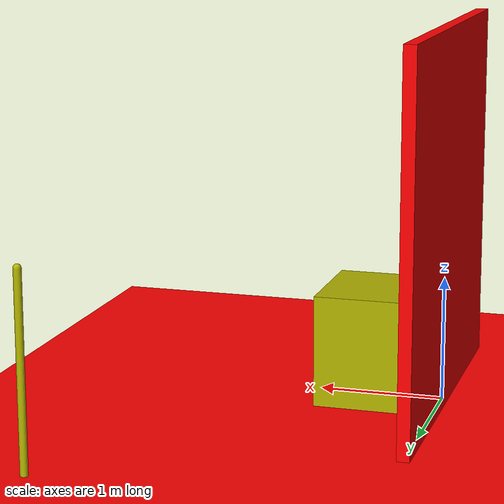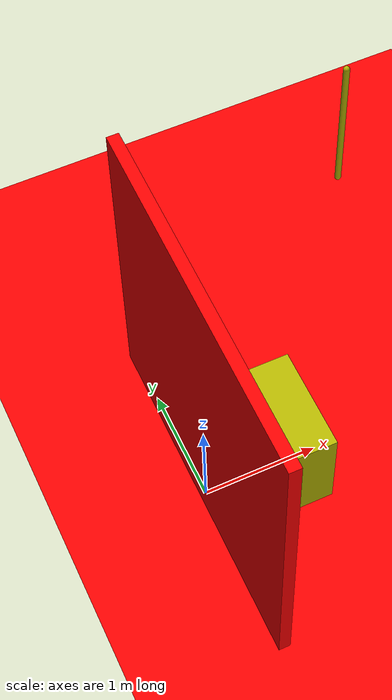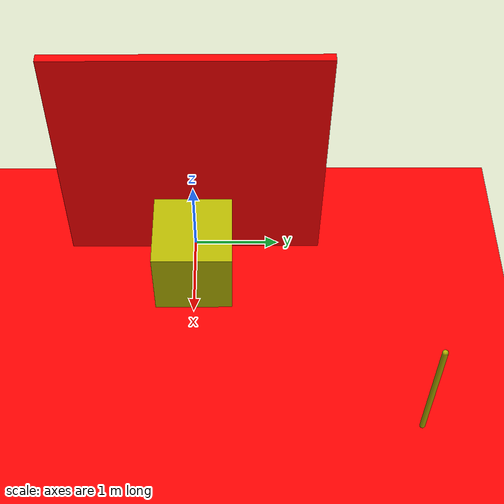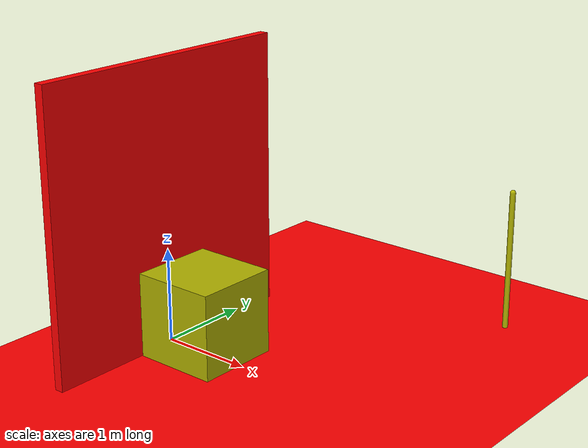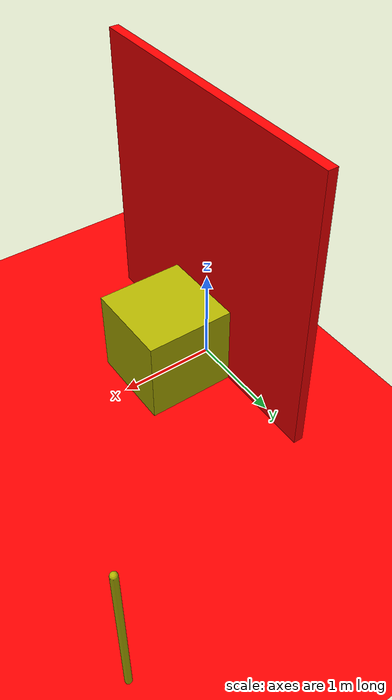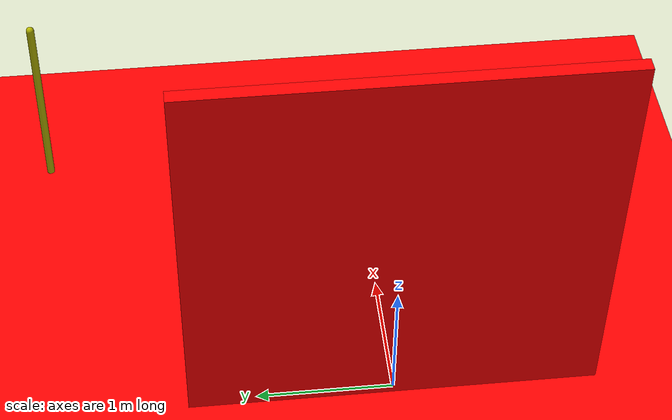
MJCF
<mujoco model="pusher_plane_2d">
    <compiler angle="radian" inertiafromgeom="true"/>
    <default>
        <joint armature="1" damping="1" limited="true"/>
        <geom contype="0" friction="1. 0.1 0.1" rgba="0.7 0.7 0 1" solimp=".5 .5 .001" solref=".02 1"/>
    </default>

   <option timestep='0.01' iterations="50" tolerance="1e-7" solver="Newton" jacobian="dense" cone="elliptic"/>

   <size nstack="1000000"/>

   <asset>
      <texture type="skybox" builtin="gradient" width="128" height="128" rgb1=".4 .6 .8"
         rgb2="0 0 0"/>
      <texture name="texgeom" type="cube" builtin="flat" mark="cross" width="127" height="1278"
         rgb1="0.8 0.6 0.4" rgb2="0.8 0.6 0.4" markrgb="1 1 1" random="0.01"/>
      <texture name="texplane" type="2d" builtin="checker" rgb1=".2 .3 .4" rgb2=".1 0.15 0.2"
         width="512" height="512"/>

      <material name='MatPlane' reflectance='0.3' texture="texplane" texrepeat="1 1" texuniform="true"/>
      <material name='geom' texture="texgeom" texuniform="true"/>
   </asset>

   <worldbody>
        <!-- Ground -->
      <geom name='floor' rgba="1 0 0 1" pos='0 0 0' size='5 5 .125' type='plane' material="MatPlane" condim='3'/>
        <!-- Ground Center -->
        <!-- Pusher -->

        <body name="pusher" pos="0 0.0 1.5">
            <geom rgba="1 0 0 1" type="box" size="0.05 1.5 1.5" mass="100.0" contype="1" conaffinity="1" condim="3" friction="10.0 10.0 0.01"/>
            <joint name="push_slidex" type="slide" pos="0 0 0" axis="1 0 0" range="-10.3213 10.3" damping="1.0"/>
            <joint name="push_slidey" type="slide" pos="0 0 0" axis="0 1 0" range="-10.3213 10.3" damping="1.0"/>
            <joint name="push_hinge" type="hinge" pos="0 0 0" axis="0 0 1" range="-1000. 1000.0" damping="1.0"/>
        </body>
        <!-- Object -->
       <body name='box' pos='0.5 0 0.44'>
            <joint name="slidex" type="slide" pos="0 0 0" axis="1 0 0" range="-10.3213 10.3" damping="1.0"/>
            <joint name="slidey" type="slide" pos="0 0 0" axis="0 1 0" range="-10.3213 10.3" damping="1.0"/>
          <geom name='box' type='box' size='0.45 0.45 0.45' mass='35.0' condim='3'/>
       </body>
      <geom name='target' type='capsule' fromto='2.5 2.5 0 2.5 2.5 1.5'  size='0.03' contype='0' conaffinity='0'/>

        <camera euler="0 0 0" fovy="50" name="top_cam" pos="0 0 1.0"></camera>

    </worldbody>

<contact>
  <pair geom1='box' geom2='floor' friction='0.01 0.01' condim='3'/>
</contact>

    <actuator>
        <motor ctrllimited="true" ctrlrange="-1.0 1.0" gear="5000.0" joint="push_slidex"/>
        <motor ctrllimited="true" ctrlrange="-1.0 1.0" gear="5000.0" joint="push_slidey"/>
        <motor ctrllimited="true" ctrlrange="-1.0 1.0" gear="50.0" joint="push_hinge"/>
    </actuator>
</mujoco>
